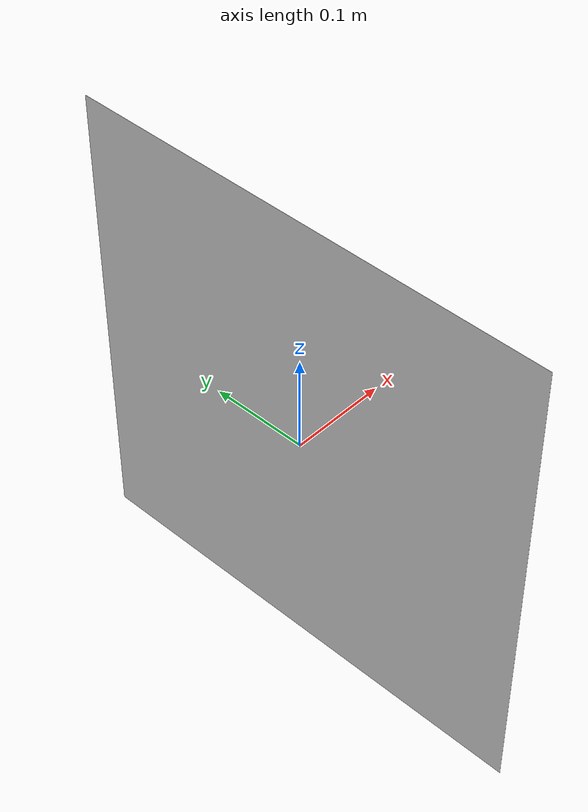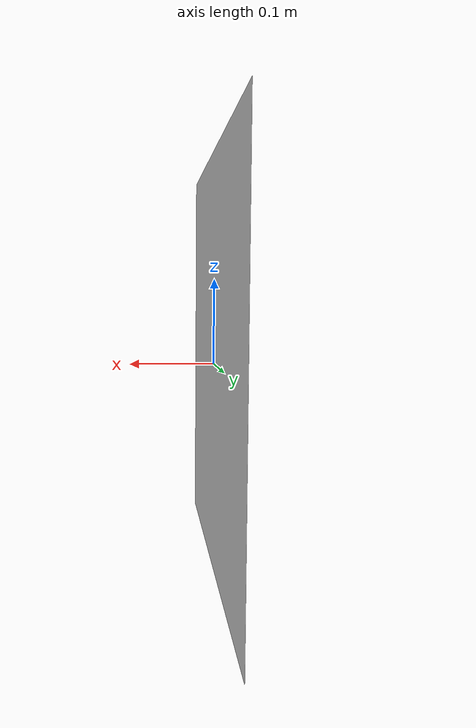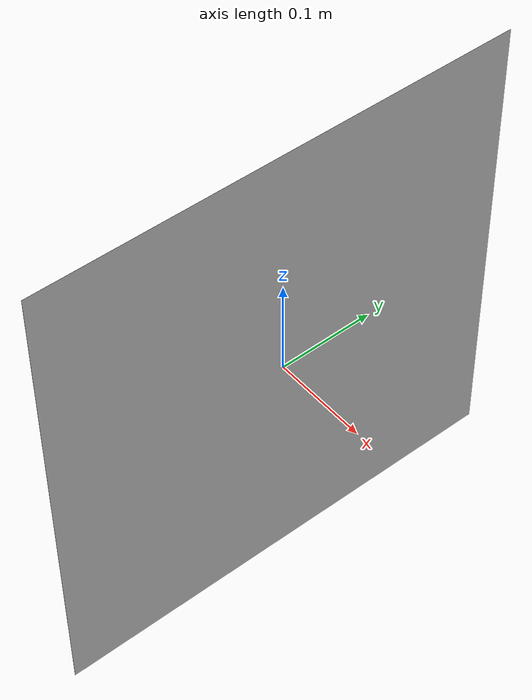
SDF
<?xml version="1.0"?>
<sdf version="1.6">
  <model name="aruco_5">
    <link name="link">
      <inertial>
        <pose>0 0 0 0 0 0</pose>
        <mass>0.001</mass>
        <inertia>
          <ixx>3.7499999999999997e-06</ixx>
          <ixy>0.0</ixy>
          <ixz>0.0</ixz>
          <iyy>1.8750008333333333e-06</iyy>
          <iyz>0.0</iyz>
          <izz>1.8750008333333333e-06</izz>
        </inertia>
      </inertial>
      <visual name="front_visual">
        <pose>0.00005 0 0 0 0 0</pose>
        <geometry>
          <box>
            <size>0.0001 0.5 0.5</size>
          </box>
        </geometry>
        <material>
          <script>
            <uri>model://aruco_marker/materials/scripts</uri>
            <uri>model://aruco_marker/materials/textures</uri>
            <name>aruco_5</name>
          </script>
        </material>
      </visual>
      <!-- Hide the marker from the back -->
      <visual name="rear_visual">
        <pose>-0.00005 0 0 0 0 0</pose>
        <geometry>
          <box>
            <size>0.0001 0.5 0.5</size>
          </box>
        </geometry>
      </visual>
      <collision name="collision">
        <pose>0 0 0 0 0 0</pose>
        <geometry>
          <box>
            <size>0.0001 0.5 0.5</size>
          </box>
        </geometry>
      </collision>
    </link>
    <joint name="aruco_joint" type="fixed">
      <axis>0 0 1</axis>
      <parent>world</parent>
      <child>aruco_5::link</child>
      <pose>2 2 5 0 0 0</pose>
    </joint>
  </model>
</sdf>
